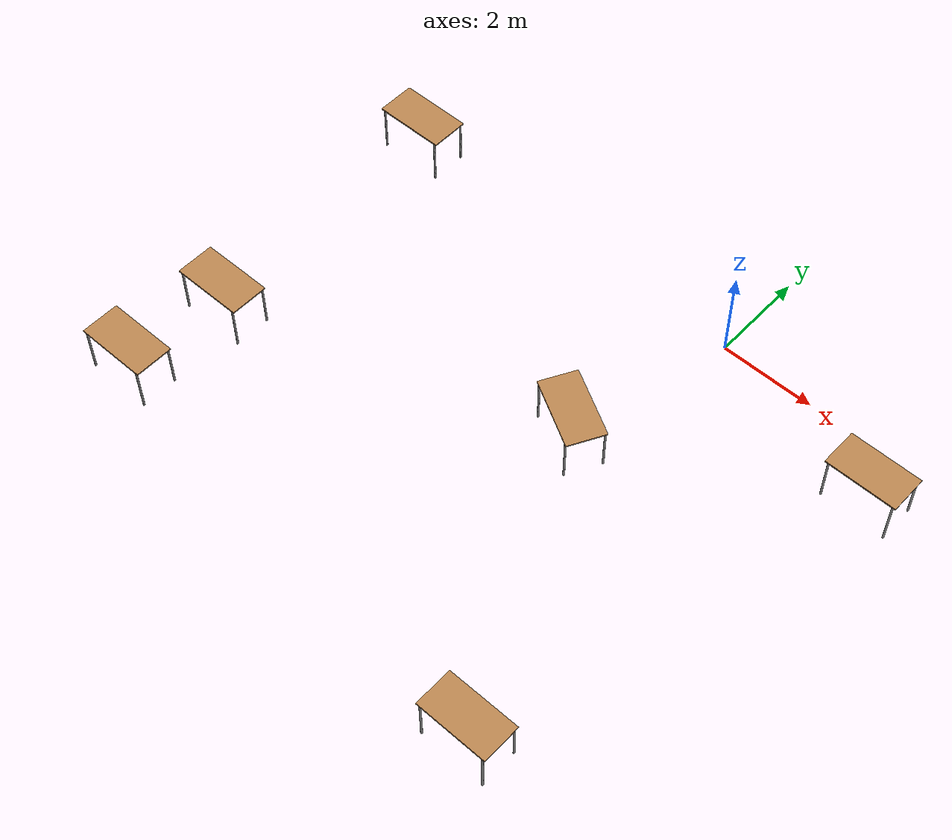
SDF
<sdf version="1.6">
 <world name="__default__">
  <model name="table_1">
   <static>1</static>
   <link name="link">
    <collision name="surface">
     <pose>0 0 1 0 -0 0</pose>
     <geometry><box><size>1.5 0.8 0.03</size></box></geometry>
     <surface><friction><ode><mu>0.6</mu><mu2>0.6</mu2></ode></friction></surface>
    </collision>
    <visual name="visual1">
     <pose>0 0 1 0 -0 0</pose>
     <geometry><box><size>1.5 0.8 0.03</size></box></geometry>
     <material>
      <script><uri>file://media/materials/scripts/gazebo.material</uri><name>Gazebo/Wood</name></script>
     </material>
    </visual>
    <collision name="front_left_leg">
     <pose>0.68 0.38 0.5 0 -0 0</pose>
     <geometry><cylinder><radius>0.02</radius><length>1</length></cylinder></geometry>
    </collision>
    <visual name="front_left_leg">
     <pose>0.68 0.38 0.5 0 -0 0</pose>
     <geometry><cylinder><radius>0.02</radius><length>1</length></cylinder></geometry>
     <material>
      <script><uri>file://media/materials/scripts/gazebo.material</uri><name>Gazebo/Grey</name></script>
     </material>
    </visual>
    <collision name="front_right_leg">
     <pose>0.68 -0.38 0.5 0 -0 0</pose>
     <geometry><cylinder><radius>0.02</radius><length>1</length></cylinder></geometry>
    </collision>
    <visual name="front_right_leg">
     <pose>0.68 -0.38 0.5 0 -0 0</pose>
     <geometry><cylinder><radius>0.02</radius><length>1</length></cylinder></geometry>
     <material>
      <script><uri>file://media/materials/scripts/gazebo.material</uri><name>Gazebo/Grey</name></script>
     </material>
    </visual>
    <collision name="back_right_leg">
     <pose>-0.68 -0.38 0.5 0 -0 0</pose>
     <geometry><cylinder><radius>0.02</radius><length>1</length></cylinder></geometry>
    </collision>
    <visual name="back_right_leg">
     <pose>-0.68 -0.38 0.5 0 -0 0</pose>
     <geometry><cylinder><radius>0.02</radius><length>1</length></cylinder></geometry>
     <material>
      <script><uri>file://media/materials/scripts/gazebo.material</uri><name>Gazebo/Grey</name></script>
     </material>
    </visual>
    <collision name="back_left_leg">
     <pose>-0.68 0.38 0.5 0 -0 0</pose>
     <geometry><cylinder><radius>0.02</radius><length>1</length></cylinder></geometry>
    </collision>
    <visual name="back_left_leg">
     <pose>-0.68 0.38 0.5 0 -0 0</pose>
     <geometry><cylinder><radius>0.02</radius><length>1</length></cylinder></geometry>
     <material>
      <script><uri>file://media/materials/scripts/gazebo.material</uri><name>Gazebo/Grey</name></script>
     </material>
    </visual>
   </link>
   <pose>3.9771 -1.07075 0 0 -0 0</pose>
  </model>
  <model name="table_2">
   <static>1</static>
   <link name="link">
    <collision name="surface">
     <pose>0 0 1 0 -0 0</pose>
     <geometry><box><size>1.5 0.8 0.03</size></box></geometry>
     <surface><friction><ode><mu>0.6</mu><mu2>0.6</mu2></ode></friction></surface>
    </collision>
    <visual name="visual1">
     <pose>0 0 1 0 -0 0</pose>
     <geometry><box><size>1.5 0.8 0.03</size></box></geometry>
     <material>
      <script><uri>file://media/materials/scripts/gazebo.material</uri><name>Gazebo/Wood</name></script>
     </material>
    </visual>
    <collision name="front_left_leg">
     <pose>0.68 0.38 0.5 0 -0 0</pose>
     <geometry><cylinder><radius>0.02</radius><length>1</length></cylinder></geometry>
    </collision>
    <visual name="front_left_leg">
     <pose>0.68 0.38 0.5 0 -0 0</pose>
     <geometry><cylinder><radius>0.02</radius><length>1</length></cylinder></geometry>
     <material>
      <script><uri>file://media/materials/scripts/gazebo.material</uri><name>Gazebo/Grey</name></script>
     </material>
    </visual>
    <collision name="front_right_leg">
     <pose>0.68 -0.38 0.5 0 -0 0</pose>
     <geometry><cylinder><radius>0.02</radius><length>1</length></cylinder></geometry>
    </collision>
    <visual name="front_right_leg">
     <pose>0.68 -0.38 0.5 0 -0 0</pose>
     <geometry><cylinder><radius>0.02</radius><length>1</length></cylinder></geometry>
     <material>
      <script><uri>file://media/materials/scripts/gazebo.material</uri><name>Gazebo/Grey</name></script>
     </material>
    </visual>
    <collision name="back_right_leg">
     <pose>-0.68 -0.38 0.5 0 -0 0</pose>
     <geometry><cylinder><radius>0.02</radius><length>1</length></cylinder></geometry>
    </collision>
    <visual name="back_right_leg">
     <pose>-0.68 -0.38 0.5 0 -0 0</pose>
     <geometry><cylinder><radius>0.02</radius><length>1</length></cylinder></geometry>
     <material>
      <script><uri>file://media/materials/scripts/gazebo.material</uri><name>Gazebo/Grey</name></script>
     </material>
    </visual>
    <collision name="back_left_leg">
     <pose>-0.68 0.38 0.5 0 -0 0</pose>
     <geometry><cylinder><radius>0.02</radius><length>1</length></cylinder></geometry>
    </collision>
    <visual name="back_left_leg">
     <pose>-0.68 0.38 0.5 0 -0 0</pose>
     <geometry><cylinder><radius>0.02</radius><length>1</length></cylinder></geometry>
     <material>
      <script><uri>file://media/materials/scripts/gazebo.material</uri><name>Gazebo/Grey</name></script>
     </material>
    </visual>
   </link>
   <pose>-0.793947 -3.57792 0 0 0 -0.502603</pose>
  </model>
  <model name="table_3">
   <static>1</static>
   <link name="link">
    <collision name="surface">
     <pose>0 0 1 0 -0 0</pose>
     <geometry><box><size>1.5 0.8 0.03</size></box></geometry>
     <surface><friction><ode><mu>0.6</mu><mu2>0.6</mu2></ode></friction></surface>
    </collision>
    <visual name="visual1">
     <pose>0 0 1 0 -0 0</pose>
     <geometry><box><size>1.5 0.8 0.03</size></box></geometry>
     <material>
      <script><uri>file://media/materials/scripts/gazebo.material</uri><name>Gazebo/Wood</name></script>
     </material>
    </visual>
    <collision name="front_left_leg">
     <pose>0.68 0.38 0.5 0 -0 0</pose>
     <geometry><cylinder><radius>0.02</radius><length>1</length></cylinder></geometry>
    </collision>
    <visual name="front_left_leg">
     <pose>0.68 0.38 0.5 0 -0 0</pose>
     <geometry><cylinder><radius>0.02</radius><length>1</length></cylinder></geometry>
     <material>
      <script><uri>file://media/materials/scripts/gazebo.material</uri><name>Gazebo/Grey</name></script>
     </material>
    </visual>
    <collision name="front_right_leg">
     <pose>0.68 -0.38 0.5 0 -0 0</pose>
     <geometry><cylinder><radius>0.02</radius><length>1</length></cylinder></geometry>
    </collision>
    <visual name="front_right_leg">
     <pose>0.68 -0.38 0.5 0 -0 0</pose>
     <geometry><cylinder><radius>0.02</radius><length>1</length></cylinder></geometry>
     <material>
      <script><uri>file://media/materials/scripts/gazebo.material</uri><name>Gazebo/Grey</name></script>
     </material>
    </visual>
    <collision name="back_right_leg">
     <pose>-0.68 -0.38 0.5 0 -0 0</pose>
     <geometry><cylinder><radius>0.02</radius><length>1</length></cylinder></geometry>
    </collision>
    <visual name="back_right_leg">
     <pose>-0.68 -0.38 0.5 0 -0 0</pose>
     <geometry><cylinder><radius>0.02</radius><length>1</length></cylinder></geometry>
     <material>
      <script><uri>file://media/materials/scripts/gazebo.material</uri><name>Gazebo/Grey</name></script>
     </material>
    </visual>
    <collision name="back_left_leg">
     <pose>-0.68 0.38 0.5 0 -0 0</pose>
     <geometry><cylinder><radius>0.02</radius><length>1</length></cylinder></geometry>
    </collision>
    <visual name="back_left_leg">
     <pose>-0.68 0.38 0.5 0 -0 0</pose>
     <geometry><cylinder><radius>0.02</radius><length>1</length></cylinder></geometry>
     <material>
      <script><uri>file://media/materials/scripts/gazebo.material</uri><name>Gazebo/Grey</name></script>
     </material>
    </visual>
   </link>
   <pose>-7.83524 -7.91815 0 0 -0 0</pose>
  </model>
  <model name="table_4">
   <static>1</static>
   <link name="link">
    <collision name="surface">
     <pose>0 0 1 0 -0 0</pose>
     <geometry><box><size>1.5 0.8 0.03</size></box></geometry>
     <surface><friction><ode><mu>0.6</mu><mu2>0.6</mu2></ode></friction></surface>
    </collision>
    <visual name="visual1">
     <pose>0 0 1 0 -0 0</pose>
     <geometry><box><size>1.5 0.8 0.03</size></box></geometry>
     <material>
      <script><uri>file://media/materials/scripts/gazebo.material</uri><name>Gazebo/Wood</name></script>
     </material>
    </visual>
    <collision name="front_left_leg">
     <pose>0.68 0.38 0.5 0 -0 0</pose>
     <geometry><cylinder><radius>0.02</radius><length>1</length></cylinder></geometry>
    </collision>
    <visual name="front_left_leg">
     <pose>0.68 0.38 0.5 0 -0 0</pose>
     <geometry><cylinder><radius>0.02</radius><length>1</length></cylinder></geometry>
     <material>
      <script><uri>file://media/materials/scripts/gazebo.material</uri><name>Gazebo/Grey</name></script>
     </material>
    </visual>
    <collision name="front_right_leg">
     <pose>0.68 -0.38 0.5 0 -0 0</pose>
     <geometry><cylinder><radius>0.02</radius><length>1</length></cylinder></geometry>
    </collision>
    <visual name="front_right_leg">
     <pose>0.68 -0.38 0.5 0 -0 0</pose>
     <geometry><cylinder><radius>0.02</radius><length>1</length></cylinder></geometry>
     <material>
      <script><uri>file://media/materials/scripts/gazebo.material</uri><name>Gazebo/Grey</name></script>
     </material>
    </visual>
    <collision name="back_right_leg">
     <pose>-0.68 -0.38 0.5 0 -0 0</pose>
     <geometry><cylinder><radius>0.02</radius><length>1</length></cylinder></geometry>
    </collision>
    <visual name="back_right_leg">
     <pose>-0.68 -0.38 0.5 0 -0 0</pose>
     <geometry><cylinder><radius>0.02</radius><length>1</length></cylinder></geometry>
     <material>
      <script><uri>file://media/materials/scripts/gazebo.material</uri><name>Gazebo/Grey</name></script>
     </material>
    </visual>
    <collision name="back_left_leg">
     <pose>-0.68 0.38 0.5 0 -0 0</pose>
     <geometry><cylinder><radius>0.02</radius><length>1</length></cylinder></geometry>
    </collision>
    <visual name="back_left_leg">
     <pose>-0.68 0.38 0.5 0 -0 0</pose>
     <geometry><cylinder><radius>0.02</radius><length>1</length></cylinder></geometry>
     <material>
      <script><uri>file://media/materials/scripts/gazebo.material</uri><name>Gazebo/Grey</name></script>
     </material>
    </visual>
   </link>
   <pose>-7.59532 -5.76799 0 0 -0 0</pose>
  </model>
  <model name="table_5">
   <static>1</static>
   <link name="link">
    <collision name="surface">
     <pose>0 0 1 0 -0 0</pose>
     <geometry><box><size>1.5 0.8 0.03</size></box></geometry>
     <surface><friction><ode><mu>0.6</mu><mu2>0.6</mu2></ode></friction></surface>
    </collision>
    <visual name="visual1">
     <pose>0 0 1 0 -0 0</pose>
     <geometry><box><size>1.5 0.8 0.03</size></box></geometry>
     <material>
      <script><uri>file://media/materials/scripts/gazebo.material</uri><name>Gazebo/Wood</name></script>
     </material>
    </visual>
    <collision name="front_left_leg">
     <pose>0.68 0.38 0.5 0 -0 0</pose>
     <geometry><cylinder><radius>0.02</radius><length>1</length></cylinder></geometry>
    </collision>
    <visual name="front_left_leg">
     <pose>0.68 0.38 0.5 0 -0 0</pose>
     <geometry><cylinder><radius>0.02</radius><length>1</length></cylinder></geometry>
     <material>
      <script><uri>file://media/materials/scripts/gazebo.material</uri><name>Gazebo/Grey</name></script>
     </material>
    </visual>
    <collision name="front_right_leg">
     <pose>0.68 -0.38 0.5 0 -0 0</pose>
     <geometry><cylinder><radius>0.02</radius><length>1</length></cylinder></geometry>
    </collision>
    <visual name="front_right_leg">
     <pose>0.68 -0.38 0.5 0 -0 0</pose>
     <geometry><cylinder><radius>0.02</radius><length>1</length></cylinder></geometry>
     <material>
      <script><uri>file://media/materials/scripts/gazebo.material</uri><name>Gazebo/Grey</name></script>
     </material>
    </visual>
    <collision name="back_right_leg">
     <pose>-0.68 -0.38 0.5 0 -0 0</pose>
     <geometry><cylinder><radius>0.02</radius><length>1</length></cylinder></geometry>
    </collision>
    <visual name="back_right_leg">
     <pose>-0.68 -0.38 0.5 0 -0 0</pose>
     <geometry><cylinder><radius>0.02</radius><length>1</length></cylinder></geometry>
     <material>
      <script><uri>file://media/materials/scripts/gazebo.material</uri><name>Gazebo/Grey</name></script>
     </material>
    </visual>
    <collision name="back_left_leg">
     <pose>-0.68 0.38 0.5 0 -0 0</pose>
     <geometry><cylinder><radius>0.02</radius><length>1</length></cylinder></geometry>
    </collision>
    <visual name="back_left_leg">
     <pose>-0.68 0.38 0.5 0 -0 0</pose>
     <geometry><cylinder><radius>0.02</radius><length>1</length></cylinder></geometry>
     <material>
      <script><uri>file://media/materials/scripts/gazebo.material</uri><name>Gazebo/Grey</name></script>
     </material>
    </visual>
   </link>
   <pose>-7.72939 -0.152773 0 0 -0 0</pose>
  </model>
  <model name="table_10">
   <static>1</static>
   <link name="link">
    <collision name="surface">
     <pose>0 0 1 0 -0 0</pose>
     <geometry><box><size>1.5 0.8 0.03</size></box></geometry>
     <surface><friction><ode><mu>0.6</mu><mu2>0.6</mu2></ode></friction></surface>
    </collision>
    <visual name="visual1">
     <pose>0 0 1 0 -0 0</pose>
     <geometry><box><size>1.5 0.8 0.03</size></box></geometry>
     <material>
      <script><uri>file://media/materials/scripts/gazebo.material</uri><name>Gazebo/Wood</name></script>
     </material>
    </visual>
    <collision name="front_left_leg">
     <pose>0.68 0.38 0.5 0 -0 0</pose>
     <geometry><cylinder><radius>0.02</radius><length>1</length></cylinder></geometry>
    </collision>
    <visual name="front_left_leg">
     <pose>0.68 0.38 0.5 0 -0 0</pose>
     <geometry><cylinder><radius>0.02</radius><length>1</length></cylinder></geometry>
     <material>
      <script><uri>file://media/materials/scripts/gazebo.material</uri><name>Gazebo/Grey</name></script>
     </material>
    </visual>
    <collision name="front_right_leg">
     <pose>0.68 -0.38 0.5 0 -0 0</pose>
     <geometry><cylinder><radius>0.02</radius><length>1</length></cylinder></geometry>
    </collision>
    <visual name="front_right_leg">
     <pose>0.68 -0.38 0.5 0 -0 0</pose>
     <geometry><cylinder><radius>0.02</radius><length>1</length></cylinder></geometry>
     <material>
      <script><uri>file://media/materials/scripts/gazebo.material</uri><name>Gazebo/Grey</name></script>
     </material>
    </visual>
    <collision name="back_right_leg">
     <pose>-0.68 -0.38 0.5 0 -0 0</pose>
     <geometry><cylinder><radius>0.02</radius><length>1</length></cylinder></geometry>
    </collision>
    <visual name="back_right_leg">
     <pose>-0.68 -0.38 0.5 0 -0 0</pose>
     <geometry><cylinder><radius>0.02</radius><length>1</length></cylinder></geometry>
     <material>
      <script><uri>file://media/materials/scripts/gazebo.material</uri><name>Gazebo/Grey</name></script>
     </material>
    </visual>
    <collision name="back_left_leg">
     <pose>-0.68 0.38 0.5 0 -0 0</pose>
     <geometry><cylinder><radius>0.02</radius><length>1</length></cylinder></geometry>
    </collision>
    <visual name="back_left_leg">
     <pose>-0.68 0.38 0.5 0 -0 0</pose>
     <geometry><cylinder><radius>0.02</radius><length>1</length></cylinder></geometry>
     <material>
      <script><uri>file://media/materials/scripts/gazebo.material</uri><name>Gazebo/Grey</name></script>
     </material>
    </visual>
   </link>
   <pose>1.90533 -9.27266 0 0 -0 0</pose>
  </model>
 </world>
</sdf>
